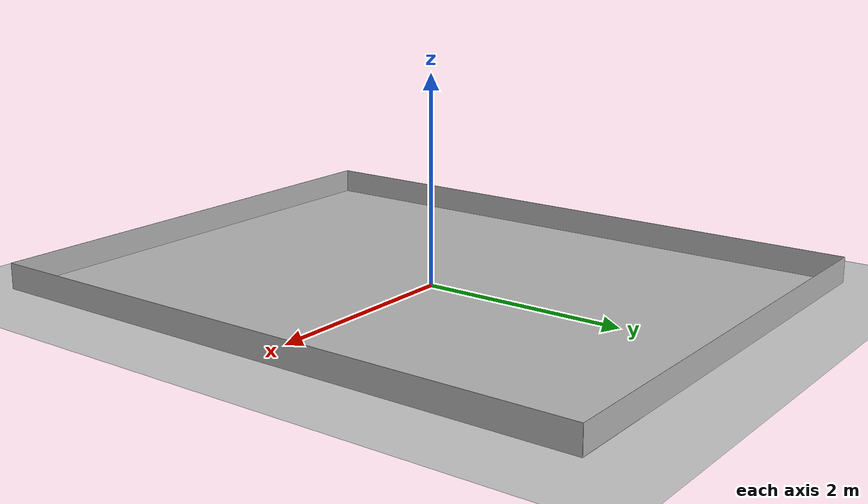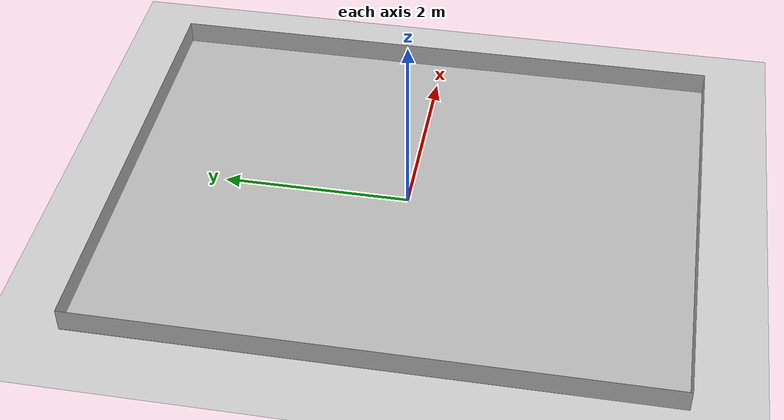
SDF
<sdf version='1.10'>
  <world name='empty'>
    <physics name='1ms' type='ignored'>
      <max_step_size>0.001</max_step_size>
      <real_time_factor>1</real_time_factor>
      <real_time_update_rate>1000</real_time_update_rate>
    </physics>
    <plugin name='gz::sim::systems::Physics' filename='gz-sim-physics-system'/>
    <plugin name='gz::sim::systems::UserCommands' filename='gz-sim-user-commands-system'/>
    <plugin name='gz::sim::systems::SceneBroadcaster' filename='gz-sim-scene-broadcaster-system'/>
    <plugin name='gz::sim::systems::Contact' filename='gz-sim-contact-system'/>
    <gravity>0 0 -9.8000000000000007</gravity>
    <magnetic_field>5.5644999999999998e-06 2.2875799999999999e-05 -4.2388400000000002e-05</magnetic_field>
    <atmosphere type='adiabatic'/>
    <scene>
      <ambient>0.400000006 0.400000006 0.400000006 1</ambient>
      <background>0.699999988 0.699999988 0.699999988 1</background>
      <shadows>true</shadows>
    </scene>
    <model name='ground_plane'>
      <static>true</static>
      <link name='link'>
        <collision name='collision'>
          <geometry>
            <plane>
              <normal>0 0 1</normal>
              <size>100 100</size>
            </plane>
          </geometry>
          <surface>
            <friction>
              <ode/>
            </friction>
            <bounce/>
            <contact/>
          </surface>
        </collision>
        <visual name='visual'>
          <geometry>
            <plane>
              <normal>0 0 1</normal>
              <size>100 100</size>
            </plane>
          </geometry>
          <material>
            <ambient>0.800000012 0.800000012 0.800000012 1</ambient>
            <diffuse>0.800000012 0.800000012 0.800000012 1</diffuse>
            <specular>0.800000012 0.800000012 0.800000012 1</specular>
          </material>
        </visual>
        <pose>0 0 0 0 0 0</pose>
        <inertial>
          <pose>0 0 0 0 0 0</pose>
          <mass>1</mass>
          <inertia>
            <ixx>1</ixx>
            <ixy>0</ixy>
            <ixz>0</ixz>
            <iyy>1</iyy>
            <iyz>0</iyz>
            <izz>1</izz>
          </inertia>
        </inertial>
        <enable_wind>false</enable_wind>
      </link>
      <pose>0 0 0 0 0 0</pose>
      <self_collide>false</self_collide>
    </model>
    <model name='qcar_track'>
      <link name='link'>
        <visual name='visual'>
          <geometry>
            <mesh>
              <uri>model://track_assessment_irs/meshes/qcar_track.obj</uri>
            </mesh>
          </geometry>
          <transparency>0</transparency>
          <cast_shadows>true</cast_shadows>
        </visual>
        <collision name='collision'>
          <geometry>
            <mesh>
              <uri>model://track_assessment_irs/meshes/qcar_track.obj</uri>
            </mesh>
          </geometry>
          <surface>
            <friction>
              <ode>
                <mu>1</mu>
                <mu2>1</mu2>
                <fdir1>0 0 0</fdir1>
                <slip1>0</slip1>
                <slip2>0</slip2>
              </ode>
              <torsional>
                <coefficient>1</coefficient>
                <patch_radius>0</patch_radius>
                <surface_radius>0</surface_radius>
                <use_patch_radius>true</use_patch_radius>
                <ode>
                  <slip>0</slip>
                </ode>
              </torsional>
            </friction>
            <bounce>
              <restitution_coefficient>0</restitution_coefficient>
              <threshold>1000000</threshold>
            </bounce>
            <contact>
              <collide_without_contact>false</collide_without_contact>
              <collide_without_contact_bitmask>1</collide_without_contact_bitmask>
              <collide_bitmask>1</collide_bitmask>
              <ode>
                <soft_cfm>0</soft_cfm>
                <soft_erp>0.20000000000000001</soft_erp>
                <kp>10000000000000</kp>
                <kd>1</kd>
                <max_vel>0.01</max_vel>
                <min_depth>0</min_depth>
              </ode>
              <bullet>
                <split_impulse>true</split_impulse>
                <split_impulse_penetration_threshold>-0.01</split_impulse_penetration_threshold>
                <soft_cfm>0</soft_cfm>
                <soft_erp>0.20000000000000001</soft_erp>
                <kp>10000000000000</kp>
                <kd>1</kd>
              </bullet>
            </contact>
          </surface>
        </collision>
        <pose>0 0 0 0 0 0</pose>
        <inertial>
          <pose>0 0 0 0 0 0</pose>
          <mass>1</mass>
          <inertia>
            <ixx>1</ixx>
            <ixy>0</ixy>
            <ixz>0</ixz>
            <iyy>1</iyy>
            <iyz>0</iyz>
            <izz>1</izz>
          </inertia>
        </inertial>
        <enable_wind>false</enable_wind>
      </link>
      <pose>-0.0035557298305445139 0.00019327083357861683 0.0012499599910649063 1.0002624533519694e-11 2.6465343962085735e-10 0.0011865689707419879</pose>
      <static>false</static>
      <self_collide>false</self_collide>
    </model>
    <model name='wood_wall_short'>
      <link name='link'>
        <visual name='visual'>
          <geometry>
            <mesh>
              <uri>model://wall_4_8x0_25/meshes/wood_wall_short.obj</uri>
            </mesh>
          </geometry>
        </visual>
        <collision name='collision'>
          <geometry>
            <mesh>
              <uri>model://wall_4_8x0_25/meshes/wood_wall_short.obj</uri>
            </mesh>
          </geometry>
        </collision>
        <pose>0 0 0 0 0 0</pose>
        <inertial>
          <pose>0 0 0 0 0 0</pose>
          <mass>1</mass>
          <inertia>
            <ixx>1</ixx>
            <ixy>0</ixy>
            <ixz>0</ixz>
            <iyy>1</iyy>
            <iyz>0</iyz>
            <izz>1</izz>
          </inertia>
        </inertial>
        <enable_wind>false</enable_wind>
      </link>
      <pose>0 -3.0500000000000007 0.125 -2.3322398238967462e-19 1.3561859730864948e-19 0.00080000008533333701</pose>
      <static>true</static>
      <self_collide>false</self_collide>
    </model>
    <model name='wood_wall_short_0'>
      <link name='link'>
        <visual name='visual'>
          <geometry>
            <mesh>
              <uri>model://wall_4_8x0_25/meshes/wood_wall_short.obj</uri>
            </mesh>
          </geometry>
        </visual>
        <collision name='collision'>
          <geometry>
            <mesh>
              <uri>model://wall_4_8x0_25/meshes/wood_wall_short.obj</uri>
            </mesh>
          </geometry>
        </collision>
        <pose>0 0 0 0 0 0</pose>
        <inertial>
          <pose>0 0 0 0 0 0</pose>
          <mass>1</mass>
          <inertia>
            <ixx>1</ixx>
            <ixy>0</ixy>
            <ixz>0</ixz>
            <iyy>1</iyy>
            <iyz>0</iyz>
            <izz>1</izz>
          </inertia>
        </inertial>
        <enable_wind>false</enable_wind>
      </link>
      <pose>-1.6263032587282567e-19 3.0499999999999994 0.125 5.4161146298909859e-187 1.4164185636352976e-190 0.00050000002083333756</pose>
      <static>true</static>
      <self_collide>false</self_collide>
    </model>
    <model name='wood_wall_long'>
      <link name='link'>
        <visual name='visual'>
          <geometry>
            <mesh>
              <uri>model://wall_6_1x0_25/meshes/wood_wall_long.obj</uri>
            </mesh>
          </geometry>
        </visual>
        <collision name='collision'>
          <geometry>
            <mesh>
              <uri>model://wall_6_1x0_25/meshes/wood_wall_long.obj</uri>
            </mesh>
          </geometry>
        </collision>
        <pose>0 0 0 0 0 0</pose>
        <inertial>
          <pose>0 0 0 0 0 0</pose>
          <mass>1</mass>
          <inertia>
            <ixx>1</ixx>
            <ixy>0</ixy>
            <ixz>0</ixz>
            <iyy>1</iyy>
            <iyz>0</iyz>
            <izz>1</izz>
          </inertia>
        </inertial>
        <enable_wind>false</enable_wind>
      </link>
      <pose>2.3999999999999999 4.5159191005957621e-20 0.12499999999999997 0 0 1.570796327</pose>
      <static>true</static>
      <self_collide>false</self_collide>
    </model>
    <model name='wood_wall_long_0'>
      <link name='link'>
        <visual name='visual'>
          <geometry>
            <mesh>
              <uri>model://wall_6_1x0_25/meshes/wood_wall_long.obj</uri>
            </mesh>
          </geometry>
        </visual>
        <collision name='collision'>
          <geometry>
            <mesh>
              <uri>model://wall_6_1x0_25/meshes/wood_wall_long.obj</uri>
            </mesh>
          </geometry>
        </collision>
        <pose>0 0 0 0 0 0</pose>
        <inertial>
          <pose>0 0 0 0 0 0</pose>
          <mass>1</mass>
          <inertia>
            <ixx>1</ixx>
            <ixy>0</ixy>
            <ixz>0</ixz>
            <iyy>1</iyy>
            <iyz>0</iyz>
            <izz>1</izz>
          </inertia>
        </inertial>
        <enable_wind>false</enable_wind>
      </link>
      <pose>-2.3999999999999999 2.631905855905634e-19 0.12500000000000003 0 0 1.570796327</pose>
      <static>true</static>
      <self_collide>false</self_collide>
    </model>
    <light name='sun' type='directional'>
      <pose>0 0 10 0 0 0</pose>
      <cast_shadows>true</cast_shadows>
      <intensity>1</intensity>
      <direction>-0.5 0.10000000000000001 -0.90000000000000002</direction>
      <diffuse>0.800000012 0.800000012 0.800000012 1</diffuse>
      <specular>0.200000003 0.200000003 0.200000003 1</specular>
      <attenuation>
        <range>1000</range>
        <linear>0.0099999997764825821</linear>
        <constant>0.89999997615814209</constant>
        <quadratic>0.0010000000474974513</quadratic>
      </attenuation>
      <spot>
        <inner_angle>0</inner_angle>
        <outer_angle>0</outer_angle>
        <falloff>0</falloff>
      </spot>
    </light>
  </world>
</sdf>
